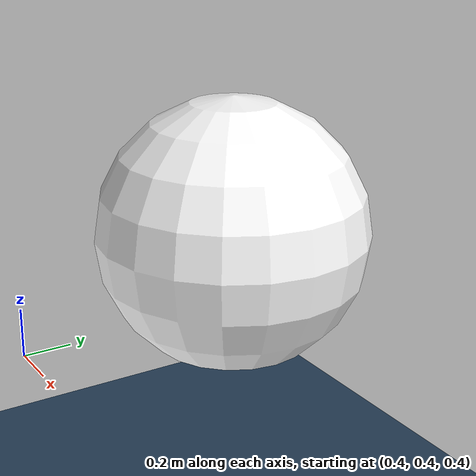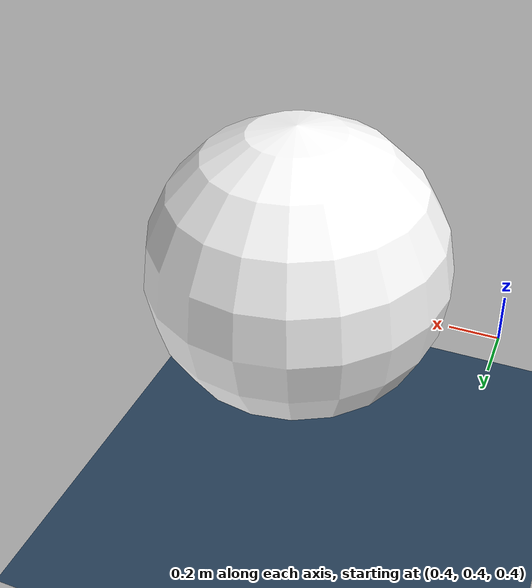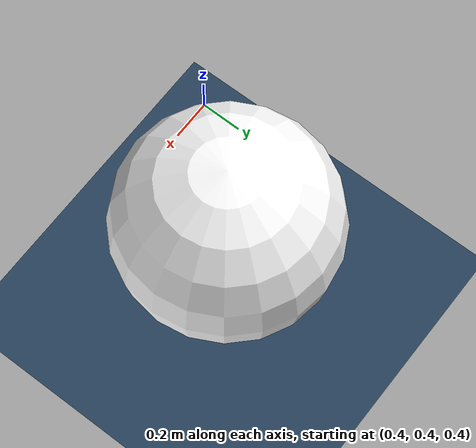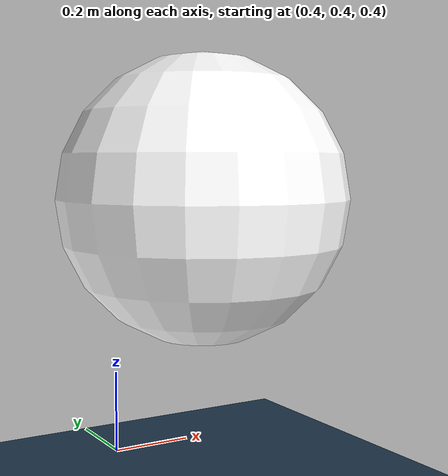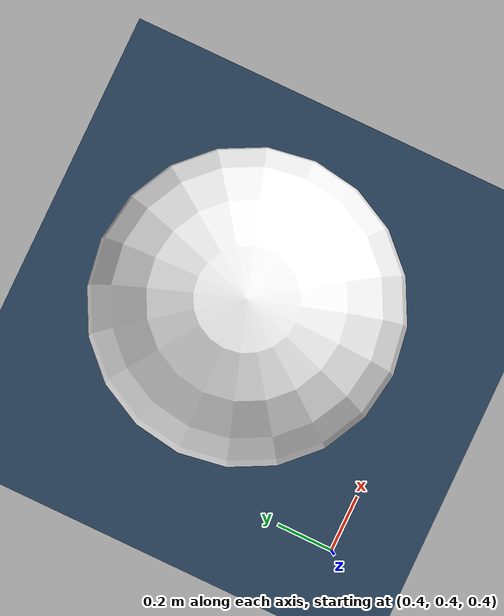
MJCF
<mujoco>
    <option gravity = "0 0 10" integrator = "RK4"/>

    <asset>
        <texture name = "grid" type = "2d" builtin="checker" rgb1 = "0.1 0.2 0.3"
        rgb2 = "0.2 0.3 0.4" width = "300" height = "300"/>
        <material name = "grid" texture = "grid" texrepeat = "8 8" reflectance = "0.2"/>
    </asset>

    <worldbody>

        <camera name="camera1" xyaxes = "0 -1 0 0 0 1" pos = "0 1 0"/>
        <geom name = "floor" type = "plane" pos = "0 0 0" size = "10 10 0.1" material = "grid"/>

        <body name = "ball" euler = "0 0 0">

            <joint name="swingy" type= "hinge" axis="0 0 1" pos="0 0 0"/>
            <geom name="ball" type="sphere" size="0.5" rgba = "1 1 1 1" pos = "1 1 1" />

        </body>

    </worldbody>
</mujoco>
